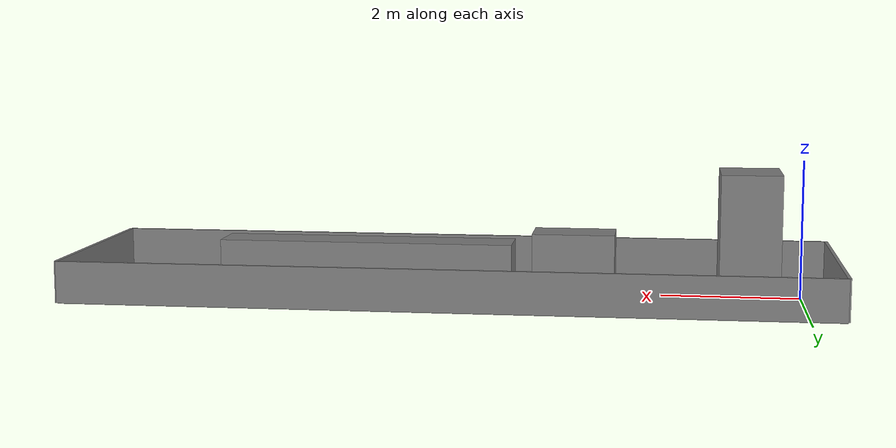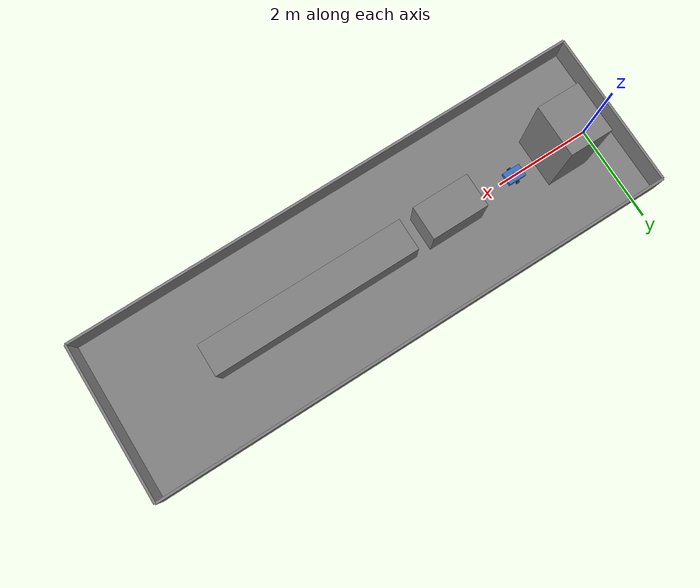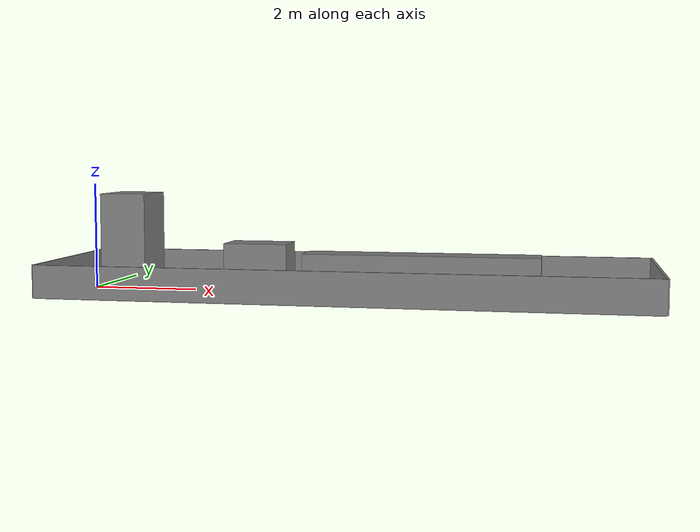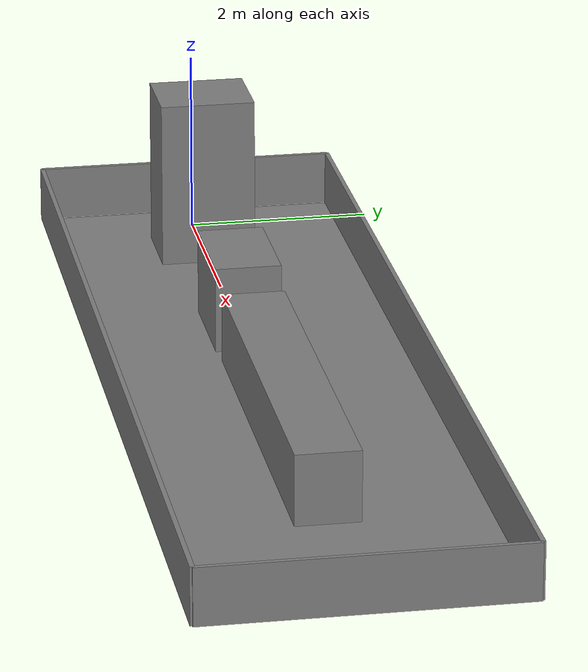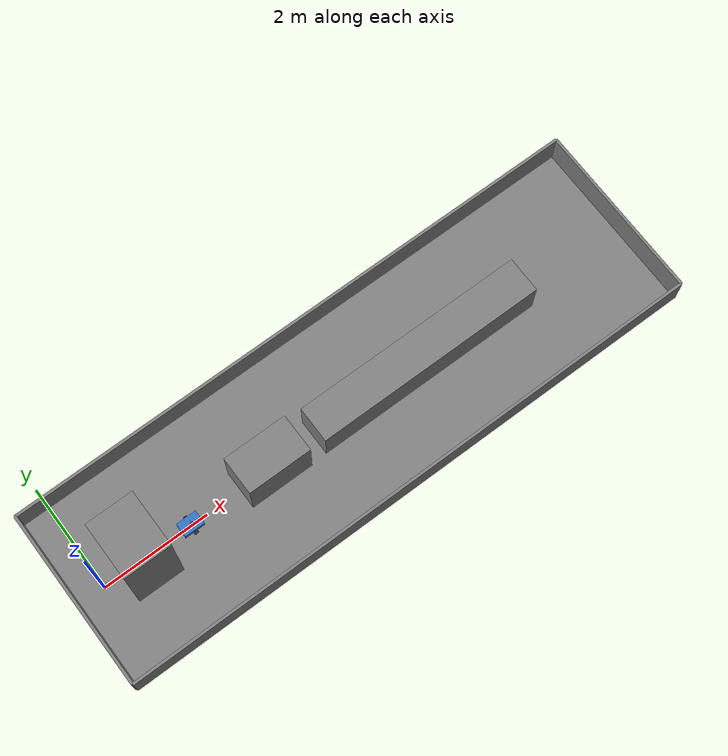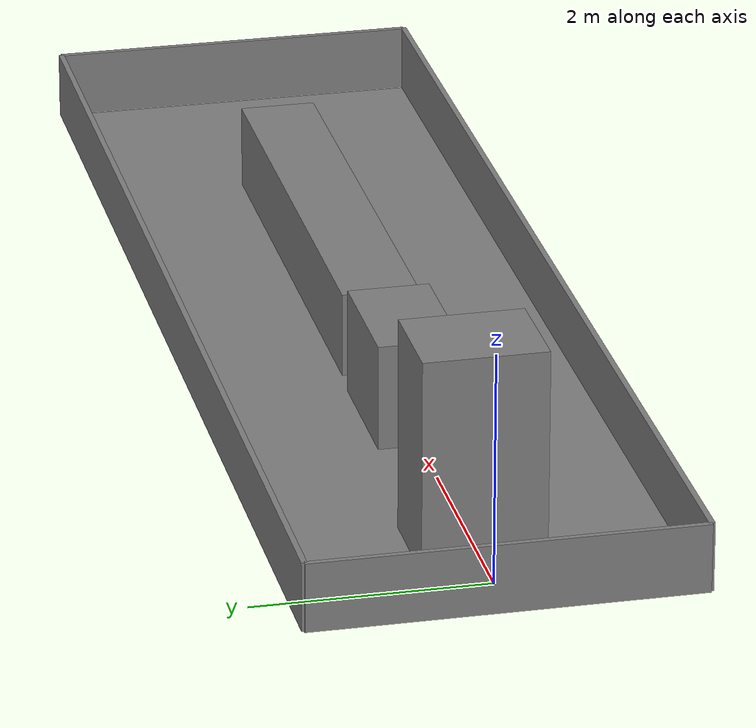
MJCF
<?xml version="1.0" encoding="utf-8"?>
<mujoco model="workcell010_p3_nav">
  <compiler angle="radian" autolimits="true" />
  <option timestep="0.002" gravity="0 0 -9.81" integrator="implicitfast" />
  <default>
    <geom friction="0.9 0.005 0.0001" condim="3" />
  </default>
  <worldbody>
    <geom name="cell_ground" size="5.51925 1.65028 0.1" pos="5.01925 0 0" type="plane" friction="0.25" />
    <geom name="cell_wall_north" size="5.51925 0.025 0.3" pos="5.01925 1.65028 0.3" type="box" />
    <geom name="cell_wall_south" size="5.51925 0.025 0.3" pos="5.01925 -1.65028 0.3" type="box" />
    <geom name="cell_wall_east" size="0.025 1.65028 0.3" pos="10.5385 0 0.3" type="box" />
    <geom name="cell_wall_west" size="0.025 1.65028 0.3" pos="-0.5 0 0.3" type="box" />
    <geom name="nav_obstacle_h" type="box" pos="0.749878 -0.000000 0.852804" size="0.433236 0.521574 0.984746" friction="1.0 0.005 0.0001" />
    <geom name="nav_obstacle_a" type="box" pos="3.265008 0.000000 0.379529" size="0.596269 0.353977 0.543506" friction="1.0 0.005 0.0001" />
    <geom name="nav_obstacle_c" type="box" pos="6.328720 0.000000 0.375991" size="2.167438 0.335000 0.375991" friction="1.0 0.005 0.0001" />
    <body name="base_link" pos="1.685000 0.0 0.040000">
      <joint name="slide_x" type="slide" axis="1 0 0" damping="0.0" />
      <joint name="slide_y" type="slide" axis="0 1 0" damping="0.0" />
      <joint name="slide_z" type="slide" axis="0 0 1" damping="0.0" />
      <joint name="yaw" type="hinge" axis="0 0 1" damping="0.02" armature="0.01" />
      <geom name="chassis" type="box" pos="0 0 0.060" size="0.19 0.13 0.05" mass="6.0" rgba="0.20 0.45 0.75 1" />
      <site name="lidar_site" pos="0.02 0 0.17" size="0.02" rgba="0.95 0.25 0.25 1" />
      <body name="wheel_left" pos="0 0.15 0">
        <joint name="wheel_left_joint" type="hinge" axis="0 1 0" damping="0.02" armature="0.004" />
        <geom name="wheel_left_geom" type="cylinder" size="0.04 0.02" quat="0.70710678 0.70710678 0 0" mass="0.45" friction="1.6 0.01 0.0001" rgba="0.15 0.15 0.18 1" />
      </body>
      <body name="wheel_right" pos="0 -0.15 0">
        <joint name="wheel_right_joint" type="hinge" axis="0 1 0" damping="0.02" armature="0.004" />
        <geom name="wheel_right_geom" type="cylinder" size="0.04 0.02" quat="0.70710678 0.70710678 0 0" mass="0.45" friction="1.6 0.01 0.0001" rgba="0.15 0.15 0.18 1" />
      </body>
    </body>
  </worldbody>
  <actuator>
    <motor name="wheel_left_motor" joint="wheel_left_joint" ctrlrange="-8 8" />
    <motor name="wheel_right_motor" joint="wheel_right_joint" ctrlrange="-8 8" />
  </actuator>
</mujoco>
